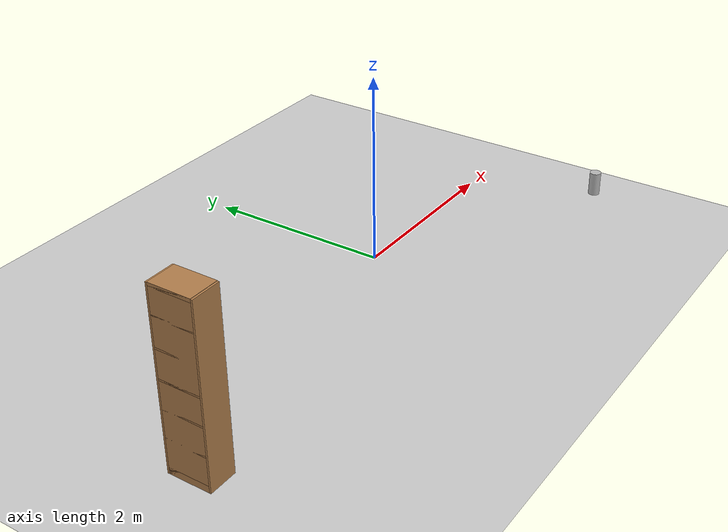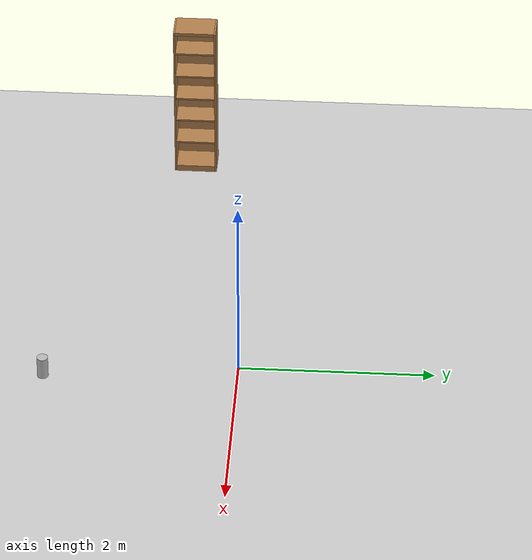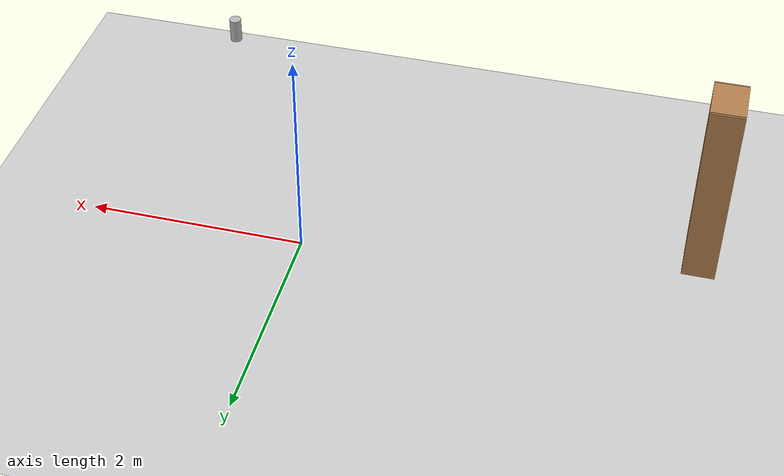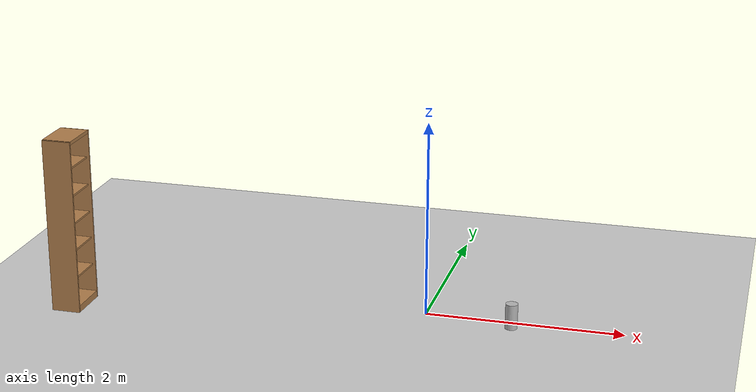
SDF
<sdf version="1.6">
 <world name="default">
  <model name="ground_plane">
   <static>1</static>
   <link name="link">
    <collision name="collision">
     <geometry><plane><normal>0 0 1</normal><size>100 100</size></plane></geometry>
     <surface><friction><ode><mu>100</mu><mu2>50</mu2></ode></friction></surface>
    </collision>
    <visual name="visual">
     <cast_shadows>0</cast_shadows>
     <geometry><plane><normal>0 0 1</normal><size>100 100</size></plane></geometry>
     <material>
      <script><uri>file://media/materials/scripts/gazebo.material</uri><name>Gazebo/Grey</name></script>
     </material>
    </visual>
   </link>
  </model>
  <model name="high_shelf">
   <link name="link">
    <inertial>
     <mass>5</mass>
     <inertia><ixx>1</ixx><ixy>0</ixy><ixz>0</ixz><iyy>1</iyy><iyz>0</iyz><izz>1</izz></inertia>
    </inertial>
    <visual name="left_board">
     <pose>-0.1475 0.009 0.898 0 -0 0</pose>
     <geometry><box><size>0.295 0.018 1.796</size></box></geometry>
     <material>
      <script>
       <uri>model://base_materials/wood/scripts</uri>
       <uri>model://base_materials/wood/textures</uri>
       <name>base_materials/light_wood</name>
      </script>
     </material>
    </visual>
    <collision name="collision_left_board">
     <pose>-0.1475 0.009 0.898 0 -0 0</pose>
     <geometry><box><size>0.295 0.018 1.796</size></box></geometry>
    </collision>
    <visual name="right_board">
     <pose>-0.1475 0.441 0.898 0 -0 0</pose>
     <geometry><box><size>0.295 0.018 1.796</size></box></geometry>
     <material>
      <script>
       <uri>model://base_materials/wood/scripts</uri>
       <uri>model://base_materials/wood/textures</uri>
       <name>base_materials/light_wood</name>
      </script>
     </material>
    </visual>
    <collision name="collision_right_board">
     <pose>-0.1475 0.441 0.898 0 -0 0</pose>
     <geometry><box><size>0.295 0.018 1.796</size></box></geometry>
    </collision>
    <visual name="top_board">
     <pose>-0.1475 0.225 1.7825 0 -0 0</pose>
     <geometry><box><size>0.295 0.414 0.035</size></box></geometry>
     <material>
      <script>
       <uri>model://base_materials/wood/scripts</uri>
       <uri>model://base_materials/wood/textures</uri>
       <name>base_materials/light_wood</name>
      </script>
     </material>
    </visual>
    <collision name="collision_top_board">
     <pose>-0.1475 0.225 1.7825 0 -0 0</pose>
     <geometry><box><size>0.295 0.414 0.035</size></box></geometry>
    </collision>
    <visual name="1st_shelf">
     <pose>-0.162 0.225 1.51 0 -0 0</pose>
     <geometry><box><size>0.266 0.414 0.018</size></box></geometry>
     <material>
      <script>
       <uri>model://base_materials/wood/scripts</uri>
       <uri>model://base_materials/wood/textures</uri>
       <name>base_materials/light_wood</name>
      </script>
     </material>
    </visual>
    <collision name="collision_1st_shelf">
     <pose>-0.162 0.225 1.51 0 -0 0</pose>
     <geometry><box><size>0.266 0.414 0.018</size></box></geometry>
    </collision>
    <visual name="2nd_shelf">
     <pose>-0.162 0.225 1.22 0 -0 0</pose>
     <geometry><box><size>0.266 0.414 0.018</size></box></geometry>
     <material>
      <script>
       <uri>model://base_materials/wood/scripts</uri>
       <uri>model://base_materials/wood/textures</uri>
       <name>base_materials/light_wood</name>
      </script>
     </material>
    </visual>
    <collision name="collision_2nd_shelf">
     <pose>-0.162 0.225 1.22 0 -0 0</pose>
     <geometry><box><size>0.266 0.414 0.018</size></box></geometry>
    </collision>
    <visual name="3rd_shelf">
     <pose>-0.162 0.225 0.93 0 -0 0</pose>
     <geometry><box><size>0.266 0.414 0.018</size></box></geometry>
     <material>
      <script>
       <uri>model://base_materials/wood/scripts</uri>
       <uri>model://base_materials/wood/textures</uri>
       <name>base_materials/light_wood</name>
      </script>
     </material>
    </visual>
    <collision name="collision_3rd_shelf">
     <pose>-0.162 0.225 0.93 0 -0 0</pose>
     <geometry><box><size>0.266 0.414 0.018</size></box></geometry>
    </collision>
    <visual name="4th_shelf">
     <pose>-0.162 0.225 0.65 0 -0 0</pose>
     <geometry><box><size>0.266 0.414 0.018</size></box></geometry>
     <material>
      <script>
       <uri>model://base_materials/wood/scripts</uri>
       <uri>model://base_materials/wood/textures</uri>
       <name>base_materials/light_wood</name>
      </script>
     </material>
    </visual>
    <collision name="collision_4th_shelf">
     <pose>-0.162 0.225 0.65 0 -0 0</pose>
     <geometry><box><size>0.266 0.414 0.018</size></box></geometry>
    </collision>
    <visual name="5th_shelf">
     <pose>-0.162 0.225 0.36 0 -0 0</pose>
     <geometry><box><size>0.266 0.414 0.018</size></box></geometry>
     <material>
      <script>
       <uri>model://base_materials/wood/scripts</uri>
       <uri>model://base_materials/wood/textures</uri>
       <name>base_materials/light_wood</name>
      </script>
     </material>
    </visual>
    <collision name="collision_5th_shelf">
     <pose>-0.162 0.225 0.36 0 -0 0</pose>
     <geometry><box><size>0.266 0.414 0.018</size></box></geometry>
    </collision>
    <visual name="bottom_board">
     <pose>-0.1475 0.225 0.035 0 -0 0</pose>
     <geometry><box><size>0.295 0.414 0.07</size></box></geometry>
     <material>
      <script>
       <uri>model://base_materials/wood/scripts</uri>
       <uri>model://base_materials/wood/textures</uri>
       <name>base_materials/light_wood</name>
      </script>
     </material>
    </visual>
    <collision name="collision_bottom_board">
     <pose>-0.1475 0.225 0.035 0 -0 0</pose>
     <geometry><box><size>0.295 0.414 0.07</size></box></geometry>
    </collision>
    <visual name="back_board">
     <pose>-0.286 0.225 0.898 0 -0 0</pose>
     <geometry><box><size>0.018 0.414 1.796</size></box></geometry>
     <material>
      <script>
       <uri>model://base_materials/wood/scripts</uri>
       <uri>model://base_materials/wood/textures</uri>
       <name>base_materials/light_wood</name>
      </script>
     </material>
    </visual>
    <collision name="collision_back_board">
     <pose>-0.286 0.225 0.898 0 -0 0</pose>
     <geometry><box><size>0.018 0.414 1.796</size></box></geometry>
    </collision>
    <velocity_decay><linear>0</linear><angular>0</angular></velocity_decay>
   </link>
   <static>1</static>
   <pose>-3.36844 -0.915845 0 0 -0 0</pose>
  </model>
  <model name="beer_0">
   <link name="link">
    <pose>0 0 0.115 0 -0 0</pose>
    <inertial>
     <mass>0.39</mass>
     <inertia><ixx>0.00058</ixx><ixy>0</ixy><ixz>0</ixz><iyy>0.00058</iyy><iyz>0</iyz><izz>0.00019</izz></inertia>
    </inertial>
    <collision name="collision">
     <geometry><cylinder><radius>0.055</radius><length>0.23</length></cylinder></geometry>
    </collision>
    <visual name="visual">
     <geometry><cylinder><radius>0.055</radius><length>0.23</length></cylinder></geometry>
     <material>
      <script>
       <uri>model://beer/materials/scripts</uri>
       <uri>model://beer/materials/textures</uri>
       <name>Beer/Diffuse</name>
      </script>
     </material>
    </visual>
   </link>
   <pose>1.18542 -1.85163 0.774992 1e-06 -2.6e-05 0.001111</pose>
  </model>
 </world>
</sdf>
